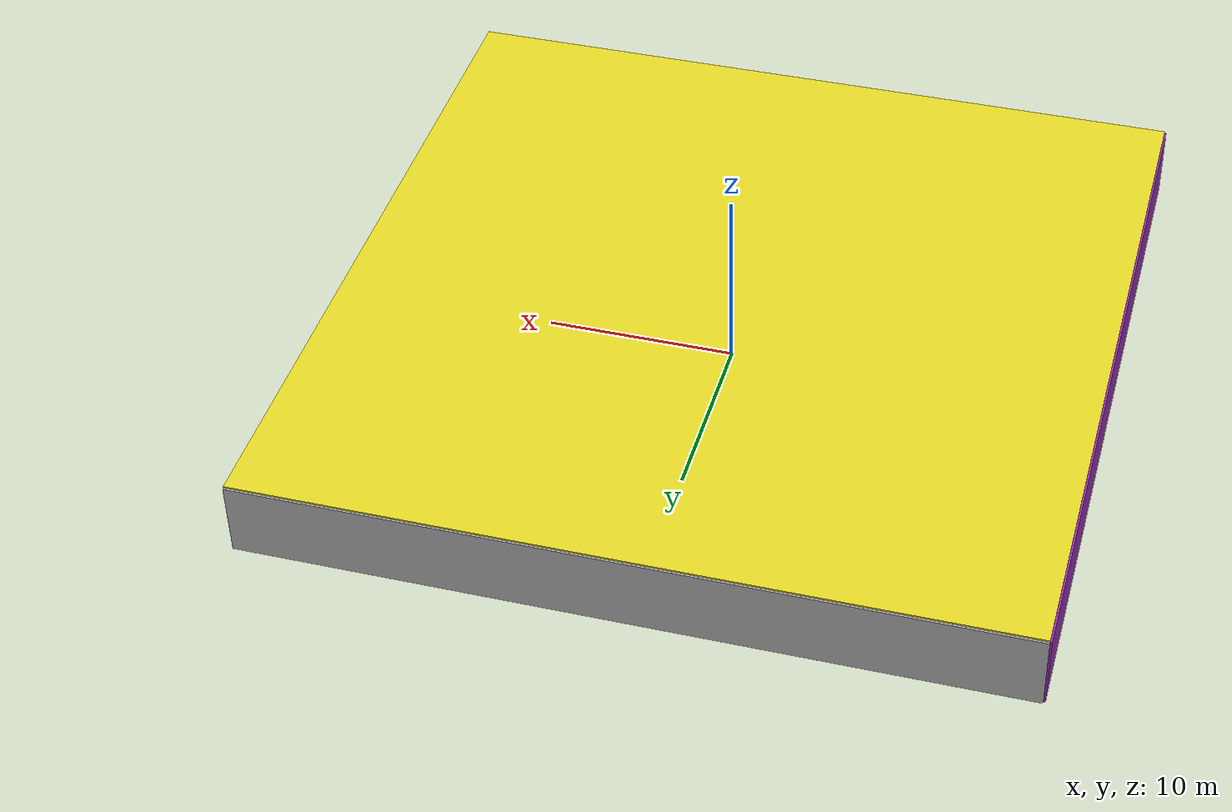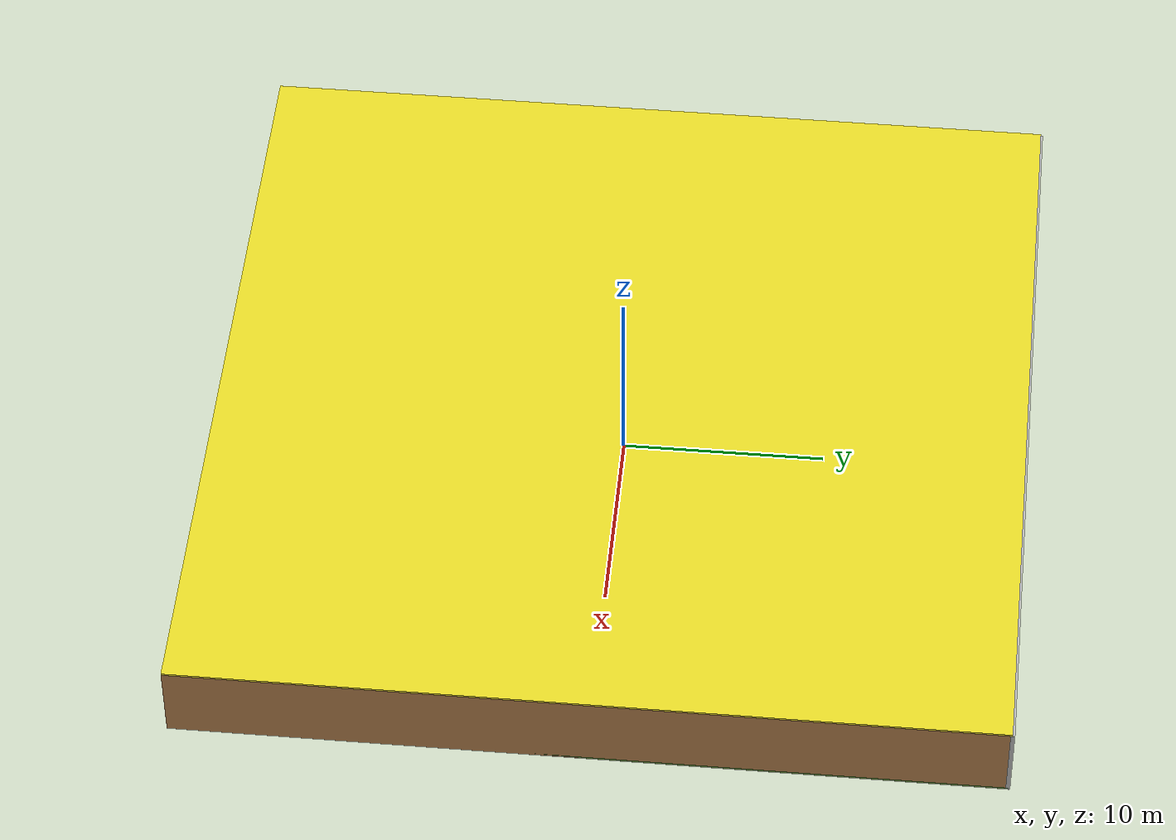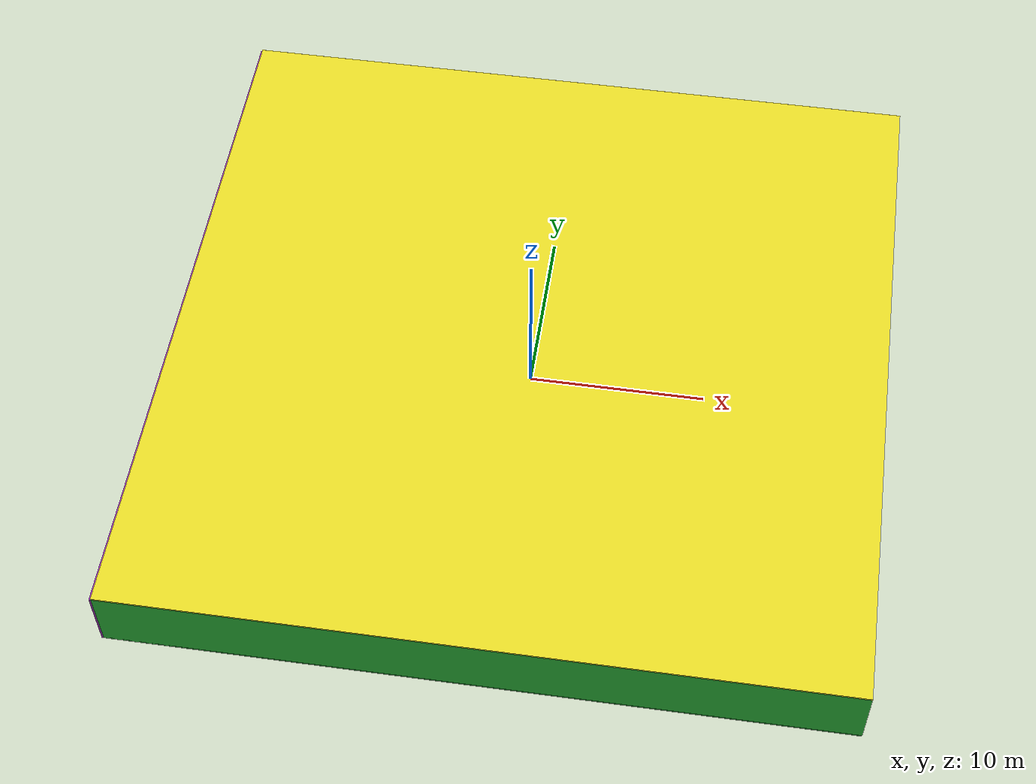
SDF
<sdf version="1.4">
 <world name="default">
  <physics type="ode">
   <max_step_size>0.001</max_step_size>
   <real_time_factor>1</real_time_factor>
   <real_time_update_rate>1000</real_time_update_rate>
   <gravity>0 0 -9.8</gravity>
  </physics>
  <scene><ambient>0.4 0.4 0.4 1</ambient><background>0.7 0.7 0.7 1</background><shadows>1</shadows></scene>
  <model name="Surrounding">
   <static>1</static>
   <link name="Ceiling">
    <collision name="Ceiling_Collision"><geometry><box><size>40 40 0.1</size></box></geometry></collision>
    <visual name="Ceiling_Visual">
     <geometry><box><size>40 40 0.1</size></box></geometry>
     <material>
      <script><uri>file://media/materials/scripts/gazebo.material</uri><name>Gazebo/YellowGlow</name></script>
     </material>
    </visual>
    <pose>0 0 4.05 0 0 0</pose>
   </link>
   <link name="Wall_South">
    <collision name="Wall_South_Collision">
     <geometry><box><size>40 0 4</size></box></geometry>
     <pose>0 0 2 0 -0 0</pose>
    </collision>
    <visual name="Wall_South_Visual">
     <pose>0 0 2 0 -0 0</pose>
     <geometry><box><size>40 0 4</size></box></geometry>
     <material>
      <script><uri>file://media/materials/scripts/gazebo.material</uri><name>Gazebo/Green</name></script>
     </material>
    </visual>
    <velocity_decay><linear>0</linear><angular>0</angular></velocity_decay>
    <pose>0 -20 0 0 -0 0</pose>
   </link>
   <link name="Wall_East">
    <collision name="Wall_21_Collision">
     <geometry><box><size>40 0 4</size></box></geometry>
     <pose>0 0 2 0 -0 0</pose>
    </collision>
    <visual name="Wall_21_Visual">
     <pose>0 0 2 0 -0 0</pose>
     <geometry><box><size>40 0 4</size></box></geometry>
     <material>
      <script><uri>file://media/materials/scripts/gazebo.material</uri><name>Gazebo/WoodPallet</name></script>
     </material>
    </visual>
    <velocity_decay><linear>0</linear><angular>0</angular></velocity_decay>
    <pose>20 0 0 0 -0 1.5708</pose>
   </link>
   <link name="Wall_North">
    <collision name="Wall_22_Collision">
     <geometry><box><size>40 0.2 4</size></box></geometry>
     <pose>0 0 2 0 -0 0</pose>
    </collision>
    <visual name="Wall_22_Visual">
     <pose>0 0 2 0 -0 0</pose>
     <geometry><box><size>40 0.2 4</size></box></geometry>
     <material>
      <script><uri>file://media/materials/scripts/gazebo.material</uri><name>Gazebo/LightOff</name></script>
     </material>
    </visual>
    <velocity_decay><linear>0</linear><angular>0</angular></velocity_decay>
    <pose>0 20 0 0 -0 0</pose>
   </link>
   <link name="Wall_West">
    <collision name="Wall_23_Collision">
     <geometry><box><size>40 0.2 4</size></box></geometry>
     <pose>0 0 2 0 -0 0</pose>
    </collision>
    <visual name="Wall_23_Visual">
     <pose>0 0 2 0 -0 0</pose>
     <geometry><box><size>40 0.2 4</size></box></geometry>
     <material>
      <script><uri>file://media/materials/scripts/gazebo.material</uri><name>Gazebo/Purple</name></script>
     </material>
    </visual>
    <velocity_decay><linear>0</linear><angular>0</angular></velocity_decay>
    <pose>-20 0 0 0 0 -1.5708</pose>
   </link>
   <link name="Ground_link">
    <collision name="collision">
     <pose>0 0 .05 0 -0 0</pose>
     <geometry><box><size>40 40 0.1</size></box></geometry>
    </collision>
    <visual name="visual">
     <pose>0 0 .05 0 -0 0</pose>
     <geometry><box><size>40 40 0.1</size></box></geometry>
     <material>
      <script><uri>file://media/materials/scripts/gazebo.material</uri><name>Gazebo/GreenTransparent</name></script>
     </material>
    </visual>
   </link>
   <static>1</static>
  </model>
  <spherical_coordinates>
   <surface_model>EARTH_WGS84</surface_model>
   <latitude_deg>0</latitude_deg>
   <longitude_deg>0</longitude_deg>
   <elevation>0</elevation>
   <heading_deg>0</heading_deg>
  </spherical_coordinates>
  <light name="lightball_0" type="diffuse">
   <diffuse>0.8 0.8 0.8 1</diffuse>
   <specular>0.2 0.2 0.2 1</specular>
   <attenuation>
    <range>100</range>
    <constant>0.7</constant>
    <linear>0.01</linear>
    <quadratic>0.001</quadratic>
   </attenuation>
   <direction>-0.5 0.1 -0.9</direction>
   <pose>13.0857464857 -5.50480254908 3.47065681744 0 0 0</pose>
  </light>
  <light name="lightball_1" type="diffuse">
   <diffuse>0.8 0.8 0.8 1</diffuse>
   <specular>0.2 0.2 0.2 1</specular>
   <attenuation>
    <range>100</range>
    <constant>0.7</constant>
    <linear>0.01</linear>
    <quadratic>0.001</quadratic>
   </attenuation>
   <direction>-0.5 0.1 -0.9</direction>
   <pose>-9.68968834849 3.69880247443 2.70455609476 0 0 0</pose>
  </light>
  <include>
   <uri>model://textured_shapes</uri>
   <pose>-17.4877263803 -11.5165397082 0 0 0 1.88899682587</pose>
  </include>
  <include>
   <uri>model://construction_cone</uri>
   <pose>-17.5486761451 -5.26411380498 0 0 0 1.38780347593</pose>
  </include>
  <include><uri>model://cabinet</uri><pose>-17.3168559171 9.8481492653 0 0 0 1.16408915807</pose></include>
  <include><uri>model://table</uri><pose>-18.1839754628 18.1160977825 0 0 0 2.61577987321</pose></include>
  <include><uri>model://cabinet</uri><pose>-13.5215683142 1.51479633174 0 0 0 1.50929788227</pose></include>
  <include><uri>model://cabinet</uri><pose>-11.2090444538 -14.3862048976 0 0 0 2.99729744321</pose></include>
  <include><uri>model://cabinet</uri><pose>-7.62960596765 9.05288812195 0 0 0 2.33028778644</pose></include>
  <include><uri>model://cabinet</uri><pose>-8.56740063243 17.5321730799 0 0 0 0.994524602479</pose></include>
  <include><uri>model://table</uri><pose>-3.04874574566 -0.407864569091 0 0 0 0.878208256922</pose></include>
  <include><uri>model://cabinet</uri><pose>-2.55223742916 16.6247814531 0 0 0 1.35507478117</pose></include>
  <include><uri>model://cabinet</uri><pose>0.839939280058 2.4530338479 0 0 0 2.34796227283</pose></include>
  <include><uri>model://table</uri><pose>5.83959085026 -13.8288914706 0 0 0 0.0656578925502</pose></include>
  <include>
   <uri>model://robocup_3Dsim_goal</uri>
   <pose>8.71728887878 -4.61578870125 0 0 0 0.114692198572</pose>
  </include>
  <include><uri>model://table</uri><pose>13.0287224077 -18.5317348287 0 0 0 0.405202500407</pose></include>
  <include><uri>model://table</uri><pose>13.4554039785 -11.681607752 0 0 0 2.97843877109</pose></include>
  <include><uri>model://cabinet</uri><pose>12.03137807 2.49950190594 0 0 0 1.23594800969</pose></include>
  <include><uri>model://table</uri><pose>18.8304137827 -8.8517962163 0 0 0 2.5374274966</pose></include>
 </world>
</sdf>

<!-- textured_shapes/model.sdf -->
<sdf version="1.6">
  <model name="textured_shapes">
    <pose>0 0 0.5 0 0 0</pose>
    <link name="box">
      <pose>0 -1.5 0 0 0 0</pose>
      <collision name="collision">
        <geometry>
          <box>
            <size>1 1 1</size>
          </box>
        </geometry>
      </collision>
      <visual name="visual">
        <geometry>
          <box>
            <size>1 1 1</size>
          </box>
        </geometry>
        <material>
          <script>
            <uri>model://../model_source/models/textured_shapes/materials/scripts</uri>
            <uri>model://../model_source/models/textured_shapes/materials/textures</uri>
            <name>TexturedShape/Squares</name>
          </script>
        </material>
      </visual>
    </link>
    <link name="sphere">
      <collision name="collision">
        <geometry>
          <sphere>
            <radius>0.5</radius>
          </sphere>
        </geometry>
      </collision>
      <visual name="visual">
        <geometry>
          <sphere>
            <radius>0.5</radius>
          </sphere>
        </geometry>
        <material>
          <script>
            <uri>model://../model_source/models/textured_shapes/materials/scripts</uri>
            <uri>model://../model_source/models/textured_shapes/materials/textures</uri>
            <name>TexturedShape/Squares</name>
          </script>
        </material>
      </visual>
    </link>
    <link name="cylinder">
      <pose>0 1.5 0 0 0 0</pose>
      <collision name="collision">
        <geometry>
          <cylinder>
            <radius>0.5</radius>
            <length>1</length>
          </cylinder>
        </geometry>
      </collision>
      <visual name="visual">
        <geometry>
          <cylinder>
            <radius>0.5</radius>
            <length>1</length>
          </cylinder>
        </geometry>
        <material>
          <script>
            <uri>model://../model_source/models/textured_shapes/materials/scripts</uri>
            <uri>model://../model_source/models/textured_shapes/materials/textures</uri>
            <name>TexturedShape/Squares</name>
          </script>
        </material>
      </visual>
    </link>
  </model>
</sdf>

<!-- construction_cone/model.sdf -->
<sdf version="1.5">
  <model name="Construction Cone">
    <link name="link">
      <collision name="collision">
        <geometry>
          <mesh>
            <scale>10 10 10</scale>
            <uri>file://isr-testbed/construction_cone/meshes/construction_cone.dae</uri>
          </mesh>
        </geometry>
      </collision>
      <visual name="visual">
        <geometry>
          <mesh>
            <scale>10 10 10</scale>
            <uri>file://isr-testbed/construction_cone/meshes/construction_cone.dae</uri>
          </mesh>
        </geometry>
      </visual>
    </link>
  </model>
</sdf>

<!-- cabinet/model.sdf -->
<sdf version="1.5">
  <model name="cabinet">
    <static>true</static>
    <link name="cabinet_bottom_plate">
      <inertial>
        <pose>0 0 -1 0 0 0</pose>
        <inertia>
          <ixx>2.050000</ixx>
          <ixy>0</ixy>
          <ixz>0</ixz>
          <iyy>2.050000</iyy>
          <iyz>0</iyz>
          <izz>2.050000</izz>
        </inertia>
        <mass>25.000000</mass>
      </inertial>
      <collision name="cabinet_bottom_plate_geom">
        <pose>0 0 0.010000 0 0 0</pose>
        <geometry>
          <box>
            <size>0.450000 0.450000 0.020000</size>
          </box>
        </geometry>
      </collision>
      <visual name="cabinet_bottom_plate_geom_visual">
        <pose>0 0 0.010000 0 0 0</pose>
        <geometry>
          <box>
            <size>0.450000 0.450000 0.020000</size>
          </box>
        </geometry>
        <material>
          <script>
            <uri>model://media/materials/scripts/gazebo.material</uri>
            <name>Gazebo/Wood</name>
          </script>
        </material>
      </visual>
      <collision name="cabinet_bottom_plate_geom_cabinet_back_plate">
        <pose>0.235000 0 0.510000 0 0 0</pose>
        <geometry>
          <box>
            <size>0.020000 0.450000 1.020000</size>
          </box>
        </geometry>
      </collision>
      <visual name="cabinet_bottom_plate_geom_cabinet_back_plate_visual">
        <pose>0.235000 0 0.510000 0 0 0</pose>
        <geometry>
          <box>
            <size>0.020000 0.450000 1.020000</size>
          </box>
        </geometry>
        <material>
          <script>
            <uri>model://media/materials/scripts/gazebo.material</uri>
            <name>Gazebo/Wood</name>
          </script>
        </material>
      </visual>
      <collision name="cabinet_bottom_plate_geom_cabinet_left_plate">
        <pose>0 0.235000 0.510000 0 0 0</pose>
        <geometry>
          <box>
            <size>0.450000 0.020000 1.020000</size>
          </box>
        </geometry>
      </collision>
      <visual name="cabinet_bottom_plate_geom_cabinet_left_plate_visual">
        <pose>0 0.235000 0.510000 0 0 0</pose>
        <geometry>
          <box>
            <size>0.450000 0.020000 1.020000</size>
          </box>
        </geometry>
        <material>
          <script>
            <uri>model://media/materials/scripts/gazebo.material</uri>
            <name>Gazebo/Wood</name>
          </script>
        </material>
      </visual>
      <collision name="cabinet_bottom_plate_geom_cabinet_middle_plate">
        <pose>0 0 0.510000 0 0 0</pose>
        <geometry>
          <box>
            <size>0.450000 0.450000 0.020000</size>
          </box>
        </geometry>
      </collision>
      <visual name="cabinet_bottom_plate_geom_cabinet_middle_plate_visual">
        <pose>0 0 0.510000 0 0 0</pose>
        <geometry>
          <box>
            <size>0.450000 0.450000 0.020000</size>
          </box>
        </geometry>
        <material>
          <script>
            <uri>model://media/materials/scripts/gazebo.material</uri>
            <name>Gazebo/Wood</name>
          </script>
        </material>
      </visual>
      <collision name="cabinet_bottom_plate_geom_cabinet_right_plate">
        <pose>0 -0.235000 0.510000 0 0 0</pose>
        <geometry>
          <box>
            <size>0.450000 0.020000 1.020000</size>
          </box>
        </geometry>
      </collision>
      <visual name="cabinet_bottom_plate_geom_cabinet_right_plate_visual">
        <pose>0 -0.235000 0.510000 0 0 0</pose>
        <geometry>
          <box>
            <size>0.450000 0.020000 1.020000</size>
          </box>
        </geometry>
        <material>
          <script>
            <uri>model://media/materials/scripts/gazebo.material</uri>
            <name>Gazebo/Wood</name>
          </script>
        </material>
      </visual>
      <collision name="cabinet_bottom_plate_geom_cabinet_top_plate">
        <pose>0 0 1.010000 0 0 0</pose>
        <geometry>
          <box>
            <size>0.450000 0.450000 0.020000</size>
          </box>
        </geometry>
      </collision>
      <visual name="cabinet_bottom_plate_geom_cabinet_top_plate_visual">
        <pose>0 0 1.010000 0 0 0</pose>
        <geometry>
          <box>
            <size>0.450000 0.450000 0.020000</size>
          </box>
        </geometry>
        <material>
          <script>
            <uri>model://media/materials/scripts/gazebo.material</uri>
            <name>Gazebo/Wood</name>
          </script>
        </material>
      </visual>
    </link>
  </model>
</sdf>

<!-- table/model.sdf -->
<sdf version="1.5">
  <model name="table">
    <static>true</static>
    <link name="link">
      <collision name="surface">
        <pose>0 0 1.0 0 0 0</pose>
        <geometry>
          <box>
            <size>1.5 0.8 0.03</size>
          </box>
        </geometry>
        <surface>
          <friction>
            <ode>
              <mu>0.6</mu>
              <mu2>0.6</mu2>
            </ode>
          </friction>
        </surface>
      </collision>
      <visual name="visual1">
        <pose>0 0 1.0 0 0 0</pose>
        <geometry>
          <box>
            <size>1.5 0.8 0.03</size>
          </box>
        </geometry>
        <material>
          <script>
            <uri>model://media/materials/scripts/gazebo.material</uri>
            <name>Gazebo/Wood</name>
          </script>
        </material>
      </visual>
      <collision name="front_left_leg">
        <pose>0.68 0.38 0.5 0 0 0</pose>
        <geometry>
          <cylinder>
            <radius>0.02</radius>
            <length>1.0</length>
          </cylinder>
        </geometry>
      </collision>
      <visual name="front_left_leg">
        <pose>0.68 0.38 0.5 0 0 0</pose>
        <geometry>
          <cylinder>
            <radius>0.02</radius>
            <length>1.0</length>
          </cylinder>
        </geometry>
        <material>
          <script>
            <uri>model://media/materials/scripts/gazebo.material</uri>
            <name>Gazebo/Grey</name>
          </script>
        </material>
      </visual>
      <collision name="front_right_leg">
        <pose>0.68 -0.38 0.5 0 0 0</pose>
        <geometry>
          <cylinder>
            <radius>0.02</radius>
            <length>1.0</length>
          </cylinder>
        </geometry>
      </collision>
      <visual name="front_right_leg">
        <pose>0.68 -0.38 0.5 0 0 0</pose>
        <geometry>
          <cylinder>
            <radius>0.02</radius>
            <length>1.0</length>
          </cylinder>
        </geometry>
        <material>
          <script>
            <uri>model://media/materials/scripts/gazebo.material</uri>
            <name>Gazebo/Grey</name>
          </script>
        </material>
      </visual>
      <collision name="back_right_leg">
        <pose>-0.68 -0.38 0.5 0 0 0</pose>
        <geometry>
          <cylinder>
            <radius>0.02</radius>
            <length>1.0</length>
          </cylinder>
        </geometry>
      </collision>
      <visual name="back_right_leg">
        <pose>-0.68 -0.38 0.5 0 0 0</pose>
        <geometry>
          <cylinder>
            <radius>0.02</radius>
            <length>1.0</length>
          </cylinder>
        </geometry>
        <material>
          <script>
            <uri>model://media/materials/scripts/gazebo.material</uri>
            <name>Gazebo/Grey</name>
          </script>
        </material>
      </visual>
      <collision name="back_left_leg">
        <pose>-0.68 0.38 0.5 0 0 0</pose>
        <geometry>
          <cylinder>
            <radius>0.02</radius>
            <length>1.0</length>
          </cylinder>
        </geometry>
      </collision>
      <visual name="back_left_leg">
        <pose>-0.68 0.38 0.5 0 0 0</pose>
        <geometry>
          <cylinder>
            <radius>0.02</radius>
            <length>1.0</length>
          </cylinder>
        </geometry>
        <material>
          <script>
            <uri>model://media/materials/scripts/gazebo.material</uri>
            <name>Gazebo/Grey</name>
          </script>
        </material>
      </visual>
    </link>
  </model>
</sdf>

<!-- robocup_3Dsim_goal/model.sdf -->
<sdf version="1.5">
  <model name="robocup_3d_goal">
    <static>true</static>
    <link name="left_post">
      <pose>0 1.05 0.45 0 0 0</pose>
      <collision name="collision">
        <geometry>
          <cylinder>
            <radius>0.05</radius>
            <length>0.9</length>
          </cylinder>
        </geometry>
      </collision>
      <visual name="visual">
        <geometry>
          <cylinder>
            <radius>0.05</radius>
            <length>0.9</length>
          </cylinder>
        </geometry>
        <material>
          <script>
            <uri>file://media/materials/scripts/gazebo.material</uri>
            <name>Gazebo/ZincYellow</name>
          </script>
        </material>
      </visual>
    </link>
    <link name="left_support_horiz_lower">
      <pose>0.30 1.05 0.01 0 0 0</pose>
      <collision name="collision">
        <geometry>
          <box>
            <size>0.50 0.02 0.02</size>
          </box>
        </geometry>
      </collision>
      <visual name="visual">
        <geometry>
          <box>
            <size>0.50 0.02 0.02</size>
          </box>
        </geometry>
        <material>
          <script>
            <uri>file://media/materials/scripts/gazebo.material</uri>
            <name>Gazebo/White</name>
          </script>
        </material>
      </visual>
    </link>
    <link name="left_support_horiz_upper">
      <pose>0.30 1.05 0.79 0 0 0</pose>
      <collision name="collision">
        <geometry>
          <box>
            <size>0.50 0.02 0.02</size>
          </box>
        </geometry>
      </collision>
      <visual name="visual">
        <geometry>
          <box>
            <size>0.50 0.02 0.02</size>
          </box>
        </geometry>
        <material>
          <script>
            <uri>file://media/materials/scripts/gazebo.material</uri>
            <name>Gazebo/White</name>
          </script>
        </material>
      </visual>
    </link>
    <link name="left_support_vertical">
      <pose>0.56 1.05 0.4 0 1.5708 0</pose>
      <collision name="collision">
        <geometry>
          <box>
            <size>0.80 0.02 0.02</size>
          </box>
        </geometry>
      </collision>
      <visual name="visual">
        <geometry>
          <box>
            <size>0.80 0.02 0.02</size>
          </box>
        </geometry>
        <material>
          <script>
            <uri>file://media/materials/scripts/gazebo.material</uri>
            <name>Gazebo/White</name>
          </script>
        </material>
      </visual>
    </link>
    <link name="right_support_horiz_lower">
      <pose>0.30 -1.05 0.01 0 0 0</pose>
      <collision name="collision">
        <geometry>
          <box>
            <size>0.50 0.02 0.02</size>
          </box>
        </geometry>
      </collision>
      <visual name="visual">
        <geometry>
          <box>
            <size>0.50 0.02 0.02</size>
          </box>
        </geometry>
        <material>
          <script>
            <uri>file://media/materials/scripts/gazebo.material</uri>
            <name>Gazebo/White</name>
          </script>
        </material>
      </visual>
    </link>
    <link name="right_support_horiz_upper">
      <pose>0.30 -1.05 0.79 0 0 0</pose>
      <collision name="collision">
        <geometry>
          <box>
            <size>0.50 0.02 0.02</size>
          </box>
        </geometry>
      </collision>
      <visual name="visual">
        <geometry>
          <box>
            <size>0.50 0.02 0.02</size>
          </box>
        </geometry>
        <material>
          <script>
            <uri>file://media/materials/scripts/gazebo.material</uri>
            <name>Gazebo/White</name>
          </script>
        </material>
      </visual>
    </link>
    <link name="right_support_vertical">
      <pose>0.56 -1.05 0.4 0 1.5708 0</pose>
      <collision name="collision">
        <geometry>
          <box>
            <size>0.80 0.02 0.02</size>
          </box>
        </geometry>
      </collision>
      <visual name="visual">
        <geometry>
          <box>
            <size>0.80 0.02 0.02</size>
          </box>
        </geometry>
        <material>
          <script>
            <uri>file://media/materials/scripts/gazebo.material</uri>
            <name>Gazebo/White</name>
          </script>
        </material>
      </visual>
    </link>
    <link name="center_support_horiz_lower">
      <pose>0.56 0 0.01 0 1.5708 0</pose>
      <collision name="collision">
        <geometry>
          <box>
            <size>0.02 2.08 0.02</size>
          </box>
        </geometry>
      </collision>
      <visual name="visual">
        <geometry>
          <box>
            <size>0.02 2.08 0.02</size>
          </box>
        </geometry>
        <material>
          <script>
            <uri>file://media/materials/scripts/gazebo.material</uri>
            <name>Gazebo/White</name>
          </script>
        </material>
      </visual>
    </link>
    <link name="center_support_horiz_upper">
      <pose>0.56 0 0.79 0 1.5708 0</pose>
      <collision name="collision">
        <geometry>
          <box>
            <size>0.02 2.08 0.02</size>
          </box>
        </geometry>
      </collision>
      <visual name="visual">
        <geometry>
          <box>
            <size>0.02 2.08 0.02</size>
          </box>
        </geometry>
        <material>
          <script>
            <uri>file://media/materials/scripts/gazebo.material</uri>
            <name>Gazebo/White</name>
          </script>
        </material>
      </visual>
    </link>
    <link name="right_post">
      <pose>0 -1.05 0.45 0 0 0</pose>
      <collision name="collision">
        <geometry>
          <cylinder>
            <radius>0.05</radius>
            <length>0.9</length>
          </cylinder>
        </geometry>
      </collision>
      <visual name="visual">
        <geometry>
          <cylinder>
            <radius>0.05</radius>
            <length>0.9</length>
          </cylinder>
        </geometry>
        <material>
          <script>
            <uri>file://media/materials/scripts/gazebo.material</uri>
            <name>Gazebo/ZincYellow</name>
          </script>
        </material>
      </visual>
    </link>
    <link name="crossbar">
      <pose>0 0 0.85 1.57 1.57 0</pose>
      <collision name="collision">
        <geometry>
          <cylinder>
            <radius>0.05</radius>
            <length>2.0</length>
          </cylinder>
        </geometry>
      </collision>
      <visual name="visual">
        <geometry>
          <cylinder>
            <radius>0.05</radius>
            <length>2.0</length>
          </cylinder>
        </geometry>
        <material>
          <script>
            <uri>file://media/materials/scripts/gazebo.material</uri>
            <name>Gazebo/ZincYellow</name>
          </script>
        </material>
      </visual>
    </link>
    <link name="center_net">
      <pose>0.56 0 0.40 0 0 0</pose>
      <collision name="collision">
        <geometry>
          <box>
            <size>0.01 2.1 0.80</size>
          </box>
        </geometry>
      </collision>
      <visual name="visual">
        <geometry>
          <box>
            <size>0.01 2.1 0.80</size>
          </box>
        </geometry>
        <material>
          <script>
            <uri>model://../model_source/models/robocup09_spl_field/materials/scripts/</uri>
            <uri>model://../model_source/models/robocup09_spl_field/materials/textures/</uri>
            <name>RoboCup/Net</name>
          </script>
        </material>
      </visual>
    </link>
    <link name="left_net">
      <pose>0.30 1.05 0.40 0 0 0</pose>
      <collision name="collision">
        <geometry>
          <box>
            <size>0.50 0.01 0.76</size>
          </box>
        </geometry>
      </collision>
      <visual name="visual">
        <geometry>
          <box>
            <size>0.50 0.01 0.76</size>
          </box>
        </geometry>
        <material>
          <script>
            <uri>model://../model_source/models/robocup09_spl_field/materials/scripts/</uri>
            <uri>model://../model_source/models/robocup09_spl_field/materials/textures/</uri>
            <name>RoboCup/Net</name>
          </script>
        </material>
      </visual>
    </link>
    <link name="right_net">
      <pose>0.30 -1.05 0.40 0 0 0</pose>
      <collision name="collision">
        <geometry>
          <box>
            <size>0.50 0.01 0.76</size>
          </box>
        </geometry>
      </collision>
      <visual name="visual">
        <geometry>
          <box>
            <size>0.50 0.01 0.76</size>
          </box>
        </geometry>
        <material>
          <script>
            <uri>model://../model_source/models/robocup09_spl_field/materials/scripts/</uri>
            <uri>model://../model_source/models/robocup09_spl_field/materials/textures/</uri>
            <name>RoboCup/Net</name>
          </script>
        </material>
      </visual>
    </link>
  </model>
</sdf>
